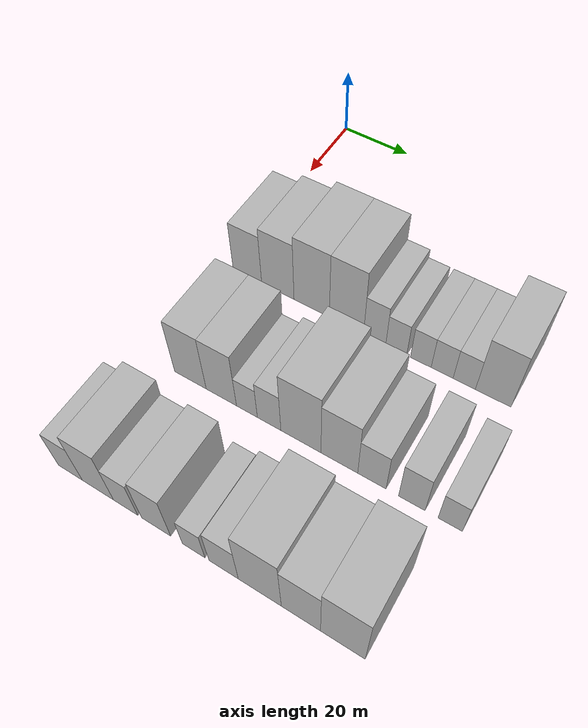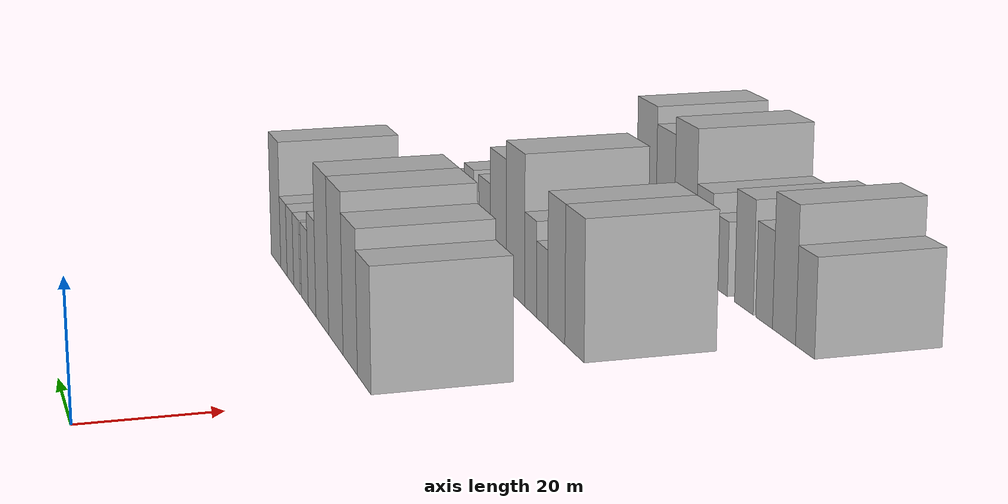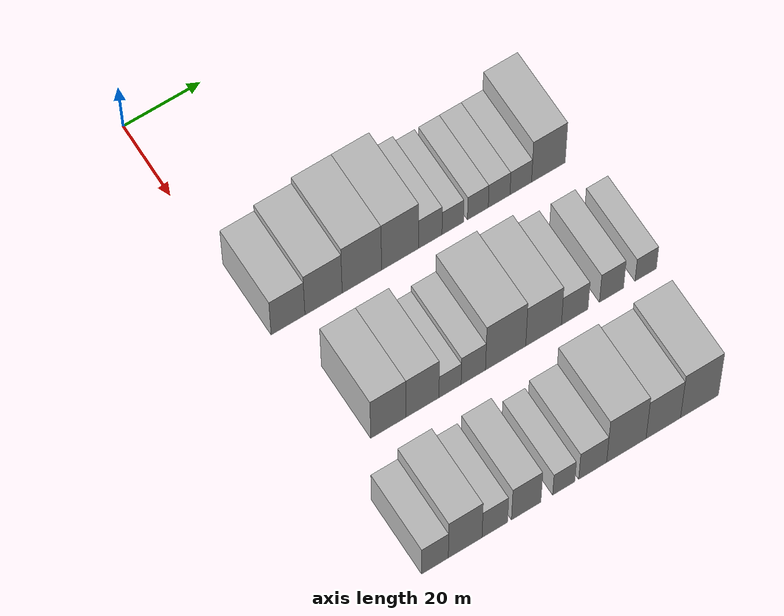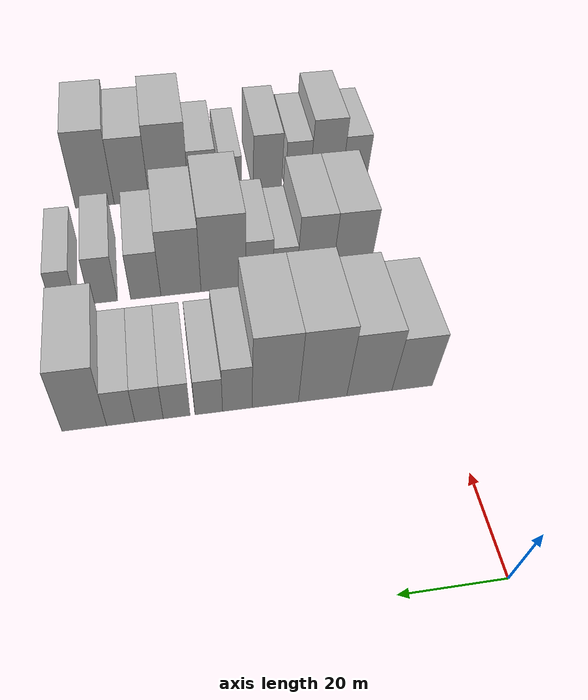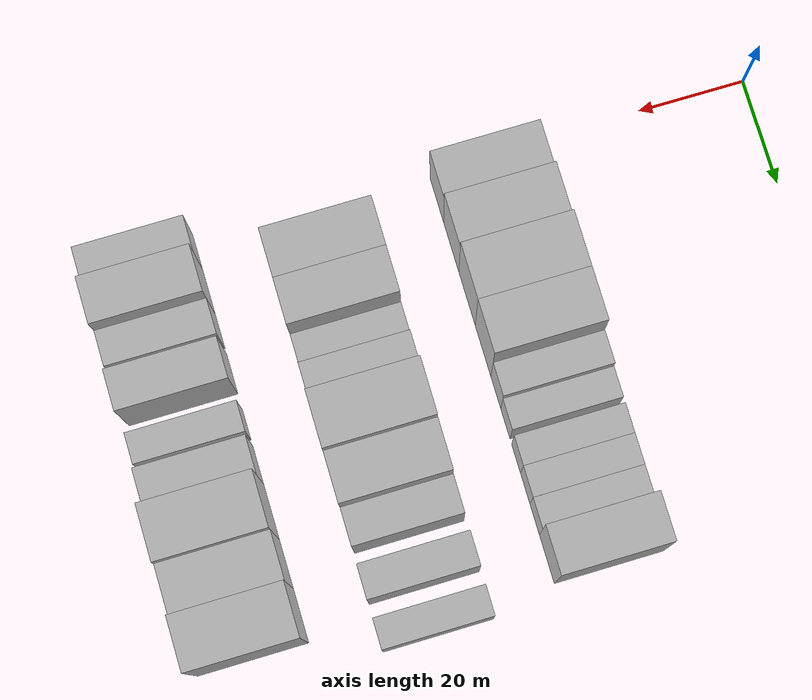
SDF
<sdf version="1.6">
 <world name="default">
  <model name="building_38">
   <static>1</static>
   <pose>50.0000 5.5079 0 0.000000 0.000000 0.000000</pose>
   <link name="link">
    <pose>0 0 9.00 0 0 0</pose>
    <collision name="collision"><geometry><box><size>20.0000 8.6827 18.0000</size></box></geometry></collision>
    <visual name="visual">
     <cast_shadows>0</cast_shadows>
     <geometry><box><size>20.0000 8.6827 18.0000</size></box></geometry>
     <material>
      <script>
       <uri>model://HANNAS_wall/materials/scripts</uri>
       <uri>model://HANNAS_wall/materials/textures</uri>
       <name>vrc/HANNAS_wall</name>
      </script>
     </material>
    </visual>
   </link>
  </model>
  <model name="building_39">
   <static>1</static>
   <pose>50.0000 14.6435 0 0.000000 0.000000 0.000000</pose>
   <link name="link">
    <pose>0 0 10.50 0 0 0</pose>
    <collision name="collision"><geometry><box><size>20.0000 9.5886 21.0000</size></box></geometry></collision>
    <visual name="visual">
     <cast_shadows>0</cast_shadows>
     <geometry><box><size>20.0000 9.5886 21.0000</size></box></geometry>
     <material>
      <script>
       <uri>model://HANNAS_wall/materials/scripts</uri>
       <uri>model://HANNAS_wall/materials/textures</uri>
       <name>vrc/HANNAS_wall</name>
      </script>
     </material>
    </visual>
   </link>
  </model>
  <model name="building_40">
   <static>1</static>
   <pose>50.0000 24.5207 0 0.000000 0.000000 0.000000</pose>
   <link name="link">
    <pose>0 0 12.00 0 0 0</pose>
    <collision name="collision"><geometry><box><size>20.0000 10.1659 24.0000</size></box></geometry></collision>
    <visual name="visual">
     <cast_shadows>0</cast_shadows>
     <geometry><box><size>20.0000 10.1659 24.0000</size></box></geometry>
     <material>
      <script>
       <uri>model://HANNAS_wall/materials/scripts</uri>
       <uri>model://HANNAS_wall/materials/textures</uri>
       <name>vrc/HANNAS_wall</name>
      </script>
     </material>
    </visual>
   </link>
  </model>
  <model name="building_41">
   <static>1</static>
   <pose>50.0000 34.4200 0 0.000000 0.000000 0.000000</pose>
   <link name="link">
    <pose>0 0 12.00 0 0 0</pose>
    <collision name="collision"><geometry><box><size>20.0000 9.6327 24.0000</size></box></geometry></collision>
    <visual name="visual">
     <cast_shadows>0</cast_shadows>
     <geometry><box><size>20.0000 9.6327 24.0000</size></box></geometry>
     <material>
      <script>
       <uri>model://HANNAS_wall/materials/scripts</uri>
       <uri>model://HANNAS_wall/materials/textures</uri>
       <name>vrc/HANNAS_wall</name>
      </script>
     </material>
    </visual>
   </link>
  </model>
  <model name="building_42">
   <static>1</static>
   <pose>50.0000 42.2608 0 0.000000 0.000000 0.000000</pose>
   <link name="link">
    <pose>0 0 7.50 0 0 0</pose>
    <collision name="collision"><geometry><box><size>20.0000 6.0489 15.0000</size></box></geometry></collision>
    <visual name="visual">
     <cast_shadows>0</cast_shadows>
     <geometry><box><size>20.0000 6.0489 15.0000</size></box></geometry>
     <material>
      <script>
       <uri>model://HANNAS_wall/materials/scripts</uri>
       <uri>model://HANNAS_wall/materials/textures</uri>
       <name>vrc/HANNAS_wall</name>
      </script>
     </material>
    </visual>
   </link>
  </model>
  <model name="building_43">
   <static>1</static>
   <pose>50.0000 48.0974 0 0.000000 0.000000 0.000000</pose>
   <link name="link">
    <pose>0 0 6.00 0 0 0</pose>
    <collision name="collision"><geometry><box><size>20.0000 5.6243 12.0000</size></box></geometry></collision>
    <visual name="visual">
     <cast_shadows>0</cast_shadows>
     <geometry><box><size>20.0000 5.6243 12.0000</size></box></geometry>
     <material>
      <script>
       <uri>model://HANNAS_wall/materials/scripts</uri>
       <uri>model://HANNAS_wall/materials/textures</uri>
       <name>vrc/HANNAS_wall</name>
      </script>
     </material>
    </visual>
   </link>
  </model>
  <model name="building_44">
   <static>1</static>
   <pose>50.0000 54.6362 0 0.000000 0.000000 0.000000</pose>
   <link name="link">
    <pose>0 0 6.00 0 0 0</pose>
    <collision name="collision"><geometry><box><size>20.0000 5.4533 12.0000</size></box></geometry></collision>
    <visual name="visual">
     <cast_shadows>0</cast_shadows>
     <geometry><box><size>20.0000 5.4533 12.0000</size></box></geometry>
     <material>
      <script>
       <uri>model://HANNAS_wall/materials/scripts</uri>
       <uri>model://HANNAS_wall/materials/textures</uri>
       <name>vrc/HANNAS_wall</name>
      </script>
     </material>
    </visual>
   </link>
  </model>
  <model name="building_45">
   <static>1</static>
   <pose>50.0000 60.2041 0 0.000000 0.000000 0.000000</pose>
   <link name="link">
    <pose>0 0 6.00 0 0 0</pose>
    <collision name="collision"><geometry><box><size>20.0000 5.6824 12.0000</size></box></geometry></collision>
    <visual name="visual">
     <cast_shadows>0</cast_shadows>
     <geometry><box><size>20.0000 5.6824 12.0000</size></box></geometry>
     <material>
      <script>
       <uri>model://HANNAS_wall/materials/scripts</uri>
       <uri>model://HANNAS_wall/materials/textures</uri>
       <name>vrc/HANNAS_wall</name>
      </script>
     </material>
    </visual>
   </link>
  </model>
  <model name="building_46">
   <static>1</static>
   <pose>50.0000 65.8773 0 0.000000 0.000000 0.000000</pose>
   <link name="link">
    <pose>0 0 6.00 0 0 0</pose>
    <collision name="collision"><geometry><box><size>20.0000 5.6639 12.0000</size></box></geometry></collision>
    <visual name="visual">
     <cast_shadows>0</cast_shadows>
     <geometry><box><size>20.0000 5.6639 12.0000</size></box></geometry>
     <material>
      <script>
       <uri>model://HANNAS_wall/materials/scripts</uri>
       <uri>model://HANNAS_wall/materials/textures</uri>
       <name>vrc/HANNAS_wall</name>
      </script>
     </material>
    </visual>
   </link>
  </model>
  <model name="building_47">
   <static>1</static>
   <pose>50.0000 73.1357 0 0.000000 0.000000 0.000000</pose>
   <link name="link">
    <pose>0 0 10.50 0 0 0</pose>
    <collision name="collision"><geometry><box><size>20.0000 8.8529 21.0000</size></box></geometry></collision>
    <visual name="visual">
     <cast_shadows>0</cast_shadows>
     <geometry><box><size>20.0000 8.8529 21.0000</size></box></geometry>
     <material>
      <script>
       <uri>model://HANNAS_wall/materials/scripts</uri>
       <uri>model://HANNAS_wall/materials/textures</uri>
       <name>vrc/HANNAS_wall</name>
      </script>
     </material>
    </visual>
   </link>
  </model>
  <model name="building_115">
   <static>1</static>
   <pose>82.0000 11.0297 0 0.000000 0.000000 0.000000</pose>
   <link name="link">
    <pose>0 0 10.50 0 0 0</pose>
    <collision name="collision"><geometry><box><size>20.0000 9.0230 21.0000</size></box></geometry></collision>
    <visual name="visual">
     <cast_shadows>0</cast_shadows>
     <geometry><box><size>20.0000 9.0230 21.0000</size></box></geometry>
     <material>
      <script>
       <uri>model://HANNAS_wall/materials/scripts</uri>
       <uri>model://HANNAS_wall/materials/textures</uri>
       <name>vrc/HANNAS_wall</name>
      </script>
     </material>
    </visual>
   </link>
  </model>
  <model name="building_116">
   <static>1</static>
   <pose>82.0000 19.7604 0 0.000000 0.000000 0.000000</pose>
   <link name="link">
    <pose>0 0 10.50 0 0 0</pose>
    <collision name="collision"><geometry><box><size>20.0000 8.4385 21.0000</size></box></geometry></collision>
    <visual name="visual">
     <cast_shadows>0</cast_shadows>
     <geometry><box><size>20.0000 8.4385 21.0000</size></box></geometry>
     <material>
      <script>
       <uri>model://HANNAS_wall/materials/scripts</uri>
       <uri>model://HANNAS_wall/materials/textures</uri>
       <name>vrc/HANNAS_wall</name>
      </script>
     </material>
    </visual>
   </link>
  </model>
  <model name="building_117">
   <static>1</static>
   <pose>82.0000 26.8236 0 0.000000 0.000000 0.000000</pose>
   <link name="link">
    <pose>0 0 6.00 0 0 0</pose>
    <collision name="collision"><geometry><box><size>20.0000 5.6878 12.0000</size></box></geometry></collision>
    <visual name="visual">
     <cast_shadows>0</cast_shadows>
     <geometry><box><size>20.0000 5.6878 12.0000</size></box></geometry>
     <material>
      <script>
       <uri>model://HANNAS_wall/materials/scripts</uri>
       <uri>model://HANNAS_wall/materials/textures</uri>
       <name>vrc/HANNAS_wall</name>
      </script>
     </material>
    </visual>
   </link>
  </model>
  <model name="building_118">
   <static>1</static>
   <pose>82.0000 32.8064 0 0.000000 0.000000 0.000000</pose>
   <link name="link">
    <pose>0 0 7.50 0 0 0</pose>
    <collision name="collision"><geometry><box><size>20.0000 6.2777 15.0000</size></box></geometry></collision>
    <visual name="visual">
     <cast_shadows>0</cast_shadows>
     <geometry><box><size>20.0000 6.2777 15.0000</size></box></geometry>
     <material>
      <script>
       <uri>model://HANNAS_wall/materials/scripts</uri>
       <uri>model://HANNAS_wall/materials/textures</uri>
       <name>vrc/HANNAS_wall</name>
      </script>
     </material>
    </visual>
   </link>
  </model>
  <model name="building_119">
   <static>1</static>
   <pose>82.0000 41.1427 0 0.000000 0.000000 0.000000</pose>
   <link name="link">
    <pose>0 0 12.00 0 0 0</pose>
    <collision name="collision"><geometry><box><size>20.0000 10.3948 24.0000</size></box></geometry></collision>
    <visual name="visual">
     <cast_shadows>0</cast_shadows>
     <geometry><box><size>20.0000 10.3948 24.0000</size></box></geometry>
     <material>
      <script>
       <uri>model://HANNAS_wall/materials/scripts</uri>
       <uri>model://HANNAS_wall/materials/textures</uri>
       <name>vrc/HANNAS_wall</name>
      </script>
     </material>
    </visual>
   </link>
  </model>
  <model name="building_120">
   <static>1</static>
   <pose>82.0000 50.9652 0 0.000000 0.000000 0.000000</pose>
   <link name="link">
    <pose>0 0 10.50 0 0 0</pose>
    <collision name="collision"><geometry><box><size>20.0000 9.2502 21.0000</size></box></geometry></collision>
    <visual name="visual">
     <cast_shadows>0</cast_shadows>
     <geometry><box><size>20.0000 9.2502 21.0000</size></box></geometry>
     <material>
      <script>
       <uri>model://HANNAS_wall/materials/scripts</uri>
       <uri>model://HANNAS_wall/materials/textures</uri>
       <name>vrc/HANNAS_wall</name>
      </script>
     </material>
    </visual>
   </link>
  </model>
  <model name="building_121">
   <static>1</static>
   <pose>82.0000 59.0543 0 0.000000 0.000000 0.000000</pose>
   <link name="link">
    <pose>0 0 7.50 0 0 0</pose>
    <collision name="collision"><geometry><box><size>20.0000 6.9281 15.0000</size></box></geometry></collision>
    <visual name="visual">
     <cast_shadows>0</cast_shadows>
     <geometry><box><size>20.0000 6.9281 15.0000</size></box></geometry>
     <material>
      <script>
       <uri>model://HANNAS_wall/materials/scripts</uri>
       <uri>model://HANNAS_wall/materials/textures</uri>
       <name>vrc/HANNAS_wall</name>
      </script>
     </material>
    </visual>
   </link>
  </model>
  <model name="building_122">
   <static>1</static>
   <pose>82.0000 68.6652 0 0.000000 0.000000 0.000000</pose>
   <link name="link">
    <pose>0 0 7.50 0 0 0</pose>
    <collision name="collision"><geometry><box><size>20.0000 6.2937 15.0000</size></box></geometry></collision>
    <visual name="visual">
     <cast_shadows>0</cast_shadows>
     <geometry><box><size>20.0000 6.2937 15.0000</size></box></geometry>
     <material>
      <script>
       <uri>model://HANNAS_wall/materials/scripts</uri>
       <uri>model://HANNAS_wall/materials/textures</uri>
       <name>vrc/HANNAS_wall</name>
      </script>
     </material>
    </visual>
   </link>
  </model>
  <model name="building_123">
   <static>1</static>
   <pose>82.0000 77.6128 0 0.000000 0.000000 0.000000</pose>
   <link name="link">
    <pose>0 0 6.00 0 0 0</pose>
    <collision name="collision"><geometry><box><size>20.0000 5.6014 12.0000</size></box></geometry></collision>
    <visual name="visual">
     <cast_shadows>0</cast_shadows>
     <geometry><box><size>20.0000 5.6014 12.0000</size></box></geometry>
     <material>
      <script>
       <uri>model://HANNAS_wall/materials/scripts</uri>
       <uri>model://HANNAS_wall/materials/textures</uri>
       <name>vrc/HANNAS_wall</name>
      </script>
     </material>
    </visual>
   </link>
  </model>
  <model name="building_187">
   <static>1</static>
   <pose>114.0000 2.4577 0 0.000000 0.000000 0.000000</pose>
   <link name="link">
    <pose>0 0 7.50 0 0 0</pose>
    <collision name="collision"><geometry><box><size>20.0000 6.7520 15.0000</size></box></geometry></collision>
    <visual name="visual">
     <cast_shadows>0</cast_shadows>
     <geometry><box><size>20.0000 6.7520 15.0000</size></box></geometry>
     <material>
      <script>
       <uri>model://HANNAS_wall/materials/scripts</uri>
       <uri>model://HANNAS_wall/materials/textures</uri>
       <name>vrc/HANNAS_wall</name>
      </script>
     </material>
    </visual>
   </link>
  </model>
  <model name="building_188">
   <static>1</static>
   <pose>114.0000 10.1117 0 0.000000 0.000000 0.000000</pose>
   <link name="link">
    <pose>0 0 10.50 0 0 0</pose>
    <collision name="collision"><geometry><box><size>20.0000 8.5560 21.0000</size></box></geometry></collision>
    <visual name="visual">
     <cast_shadows>0</cast_shadows>
     <geometry><box><size>20.0000 8.5560 21.0000</size></box></geometry>
     <material>
      <script>
       <uri>model://HANNAS_wall/materials/scripts</uri>
       <uri>model://HANNAS_wall/materials/textures</uri>
       <name>vrc/HANNAS_wall</name>
      </script>
     </material>
    </visual>
   </link>
  </model>
  <model name="building_189">
   <static>1</static>
   <pose>114.0000 17.6340 0 0.000000 0.000000 0.000000</pose>
   <link name="link">
    <pose>0 0 7.50 0 0 0</pose>
    <collision name="collision"><geometry><box><size>20.0000 6.4886 15.0000</size></box></geometry></collision>
    <visual name="visual">
     <cast_shadows>0</cast_shadows>
     <geometry><box><size>20.0000 6.4886 15.0000</size></box></geometry>
     <material>
      <script>
       <uri>model://HANNAS_wall/materials/scripts</uri>
       <uri>model://HANNAS_wall/materials/textures</uri>
       <name>vrc/HANNAS_wall</name>
      </script>
     </material>
    </visual>
   </link>
  </model>
  <model name="building_190">
   <static>1</static>
   <pose>114.0000 25.6391 0 0.000000 0.000000 0.000000</pose>
   <link name="link">
    <pose>0 0 9.00 0 0 0</pose>
    <collision name="collision"><geometry><box><size>20.0000 7.5216 18.0000</size></box></geometry></collision>
    <visual name="visual">
     <cast_shadows>0</cast_shadows>
     <geometry><box><size>20.0000 7.5216 18.0000</size></box></geometry>
     <material>
      <script>
       <uri>model://HANNAS_wall/materials/scripts</uri>
       <uri>model://HANNAS_wall/materials/textures</uri>
       <name>vrc/HANNAS_wall</name>
      </script>
     </material>
    </visual>
   </link>
  </model>
  <model name="building_191">
   <static>1</static>
   <pose>114.0000 35.2346 0 0.000000 0.000000 0.000000</pose>
   <link name="link">
    <pose>0 0 6.00 0 0 0</pose>
    <collision name="collision"><geometry><box><size>20.0000 5.6695 12.0000</size></box></geometry></collision>
    <visual name="visual">
     <cast_shadows>0</cast_shadows>
     <geometry><box><size>20.0000 5.6695 12.0000</size></box></geometry>
     <material>
      <script>
       <uri>model://HANNAS_wall/materials/scripts</uri>
       <uri>model://HANNAS_wall/materials/textures</uri>
       <name>vrc/HANNAS_wall</name>
      </script>
     </material>
    </visual>
   </link>
  </model>
  <model name="building_192">
   <static>1</static>
   <pose>114.0000 42.6597 0 0.000000 0.000000 0.000000</pose>
   <link name="link">
    <pose>0 0 7.50 0 0 0</pose>
    <collision name="collision"><geometry><box><size>20.0000 7.1807 15.0000</size></box></geometry></collision>
    <visual name="visual">
     <cast_shadows>0</cast_shadows>
     <geometry><box><size>20.0000 7.1807 15.0000</size></box></geometry>
     <material>
      <script>
       <uri>model://HANNAS_wall/materials/scripts</uri>
       <uri>model://HANNAS_wall/materials/textures</uri>
       <name>vrc/HANNAS_wall</name>
      </script>
     </material>
    </visual>
   </link>
  </model>
  <model name="building_193">
   <static>1</static>
   <pose>114.0000 51.3351 0 0.000000 0.000000 0.000000</pose>
   <link name="link">
    <pose>0 0 12.00 0 0 0</pose>
    <collision name="collision"><geometry><box><size>20.0000 10.1701 24.0000</size></box></geometry></collision>
    <visual name="visual">
     <cast_shadows>0</cast_shadows>
     <geometry><box><size>20.0000 10.1701 24.0000</size></box></geometry>
     <material>
      <script>
       <uri>model://HANNAS_wall/materials/scripts</uri>
       <uri>model://HANNAS_wall/materials/textures</uri>
       <name>vrc/HANNAS_wall</name>
      </script>
     </material>
    </visual>
   </link>
  </model>
  <model name="building_194">
   <static>1</static>
   <pose>114.0000 60.8844 0 0.000000 0.000000 0.000000</pose>
   <link name="link">
    <pose>0 0 10.50 0 0 0</pose>
    <collision name="collision"><geometry><box><size>20.0000 8.9285 21.0000</size></box></geometry></collision>
    <visual name="visual">
     <cast_shadows>0</cast_shadows>
     <geometry><box><size>20.0000 8.9285 21.0000</size></box></geometry>
     <material>
      <script>
       <uri>model://HANNAS_wall/materials/scripts</uri>
       <uri>model://HANNAS_wall/materials/textures</uri>
       <name>vrc/HANNAS_wall</name>
      </script>
     </material>
    </visual>
   </link>
  </model>
  <model name="building_195">
   <static>1</static>
   <pose>114.0000 70.2712 0 0.000000 0.000000 0.000000</pose>
   <link name="link">
    <pose>0 0 12.00 0 0 0</pose>
    <collision name="collision"><geometry><box><size>20.0000 9.8452 24.0000</size></box></geometry></collision>
    <visual name="visual">
     <cast_shadows>0</cast_shadows>
     <geometry><box><size>20.0000 9.8452 24.0000</size></box></geometry>
     <material>
      <script>
       <uri>model://HANNAS_wall/materials/scripts</uri>
       <uri>model://HANNAS_wall/materials/textures</uri>
       <name>vrc/HANNAS_wall</name>
      </script>
     </material>
    </visual>
   </link>
  </model>
 </world>
</sdf>
